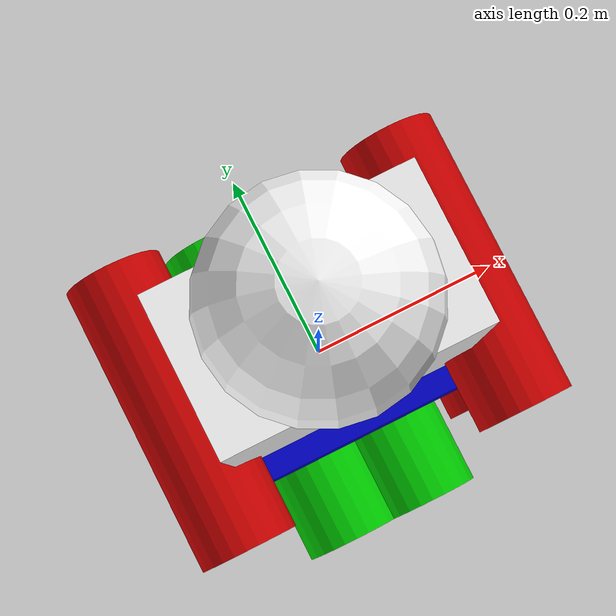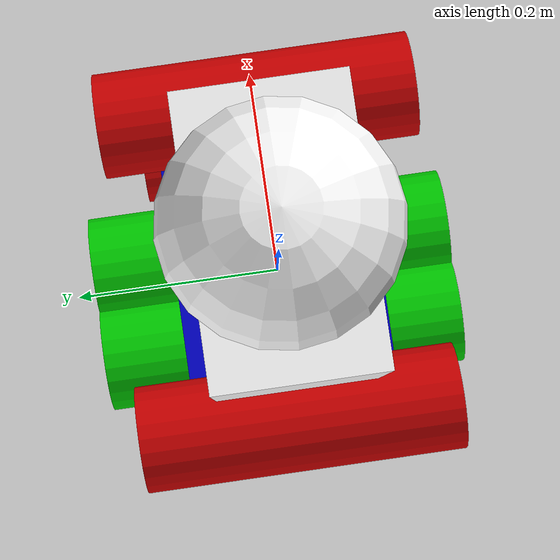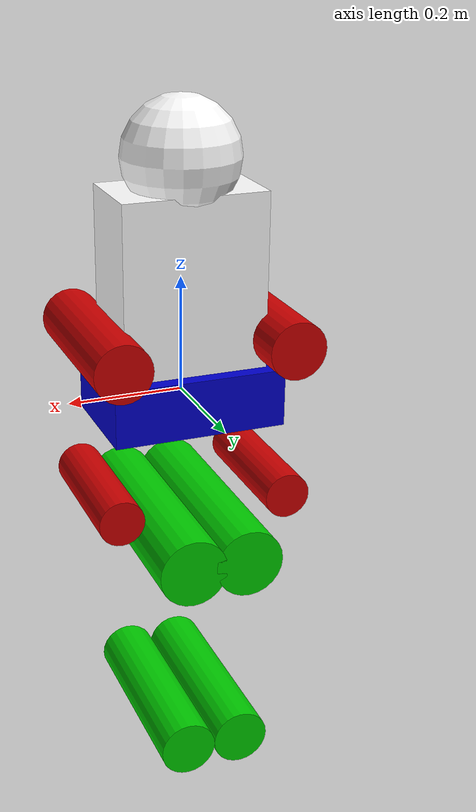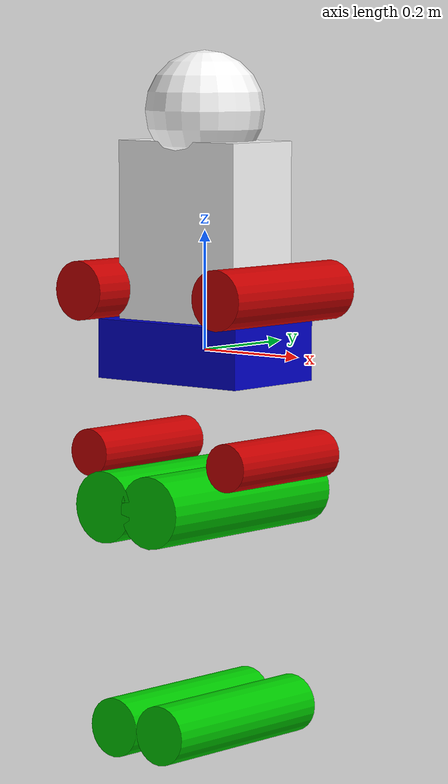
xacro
<?xml version="1.0"?>
<robot xmlns:xacro="http://www.ros.org/wiki/xacro" name="humanoid">

  <!-- Include materials -->
  <xacro:include filename="$(find humanoid_description)/urdf/materials.xacro" />

  <!-- Include Gazebo plugins -->
  <xacro:include filename="$(find humanoid_description)/urdf/gazebo.xacro" />

  <!-- Base link -->
  <link name="base_link">
    <visual>
      <geometry>
        <box size="0.3 0.2 0.1"/>
      </geometry>
      <material name="blue"/>
    </visual>
    <collision>
      <geometry>
        <box size="0.3 0.2 0.1"/>
      </geometry>
    </collision>
    <inertial>
      <mass value="5.0"/>
      <inertia ixx="0.1" ixy="0.0" ixz="0.0" iyy="0.1" iyz="0.0" izz="0.1"/>
    </inertial>
  </link>

  <!-- Torso -->
  <joint name="torso_joint" type="fixed">
    <parent link="base_link"/>
    <child link="torso"/>
    <origin xyz="0 0 0.15" rpy="0 0 0"/>
  </joint>

  <link name="torso">
    <visual>
      <geometry>
        <box size="0.25 0.15 0.4"/>
      </geometry>
      <material name="white"/>
    </visual>
    <collision>
      <geometry>
        <box size="0.25 0.15 0.4"/>
      </geometry>
    </collision>
    <inertial>
      <mass value="3.0"/>
      <inertia ixx="0.05" ixy="0.0" ixz="0.0" iyy="0.05" iyz="0.0" izz="0.05"/>
    </inertial>
  </link>

  <!-- Head -->
  <joint name="head_joint" type="fixed">
    <parent link="torso"/>
    <child link="head"/>
    <origin xyz="0 0 0.25" rpy="0 0 0"/>
  </joint>

  <link name="head">
    <visual>
      <geometry>
        <sphere radius="0.1"/>
      </geometry>
      <material name="white"/>
    </visual>
    <collision>
      <geometry>
        <sphere radius="0.1"/>
      </geometry>
    </collision>
    <inertial>
      <mass value="1.0"/>
      <inertia ixx="0.002" ixy="0.0" ixz="0.0" iyy="0.002" iyz="0.0" izz="0.002"/>
    </inertial>
  </link>

  <!-- Left Arm -->
  <joint name="left_shoulder_joint" type="revolute">
    <parent link="torso"/>
    <child link="left_upper_arm"/>
    <origin xyz="0.15 0 0.1" rpy="0 0 0"/>
    <axis xyz="0 1 0"/>
    <limit lower="-1.57" upper="1.57" effort="100" velocity="1"/>
  </joint>

  <link name="left_upper_arm">
    <visual>
      <geometry>
        <cylinder length="0.3" radius="0.05"/>
      </geometry>
      <material name="red"/>
      <origin xyz="0 0 -0.15" rpy="1.57 0 0"/>
    </visual>
    <collision>
      <geometry>
        <cylinder length="0.3" radius="0.05"/>
      </geometry>
      <origin xyz="0 0 -0.15" rpy="1.57 0 0"/>
    </collision>
    <inertial>
      <mass value="0.8"/>
      <inertia ixx="0.005" ixy="0.0" ixz="0.0" iyy="0.005" iyz="0.0" izz="0.005"/>
    </inertial>
  </link>

  <joint name="left_elbow_joint" type="revolute">
    <parent link="left_upper_arm"/>
    <child link="left_lower_arm"/>
    <origin xyz="0 0 -0.3" rpy="0 0 0"/>
    <axis xyz="0 1 0"/>
    <limit lower="-1.57" upper="1.57" effort="100" velocity="1"/>
  </joint>

  <link name="left_lower_arm">
    <visual>
      <geometry>
        <cylinder length="0.25" radius="0.04"/>
      </geometry>
      <material name="red"/>
      <origin xyz="0 0 -0.125" rpy="1.57 0 0"/>
    </visual>
    <collision>
      <geometry>
        <cylinder length="0.25" radius="0.04"/>
      </geometry>
      <origin xyz="0 0 -0.125" rpy="1.57 0 0"/>
    </collision>
    <inertial>
      <mass value="0.5"/>
      <inertia ixx="0.003" ixy="0.0" ixz="0.0" iyy="0.003" iyz="0.0" izz="0.003"/>
    </inertial>
  </link>

  <!-- Right Arm -->
  <joint name="right_shoulder_joint" type="revolute">
    <parent link="torso"/>
    <child link="right_upper_arm"/>
    <origin xyz="-0.15 0 0.1" rpy="0 0 0"/>
    <axis xyz="0 1 0"/>
    <limit lower="-1.57" upper="1.57" effort="100" velocity="1"/>
  </joint>

  <link name="right_upper_arm">
    <visual>
      <geometry>
        <cylinder length="0.3" radius="0.05"/>
      </geometry>
      <material name="red"/>
      <origin xyz="0 0 -0.15" rpy="1.57 0 0"/>
    </visual>
    <collision>
      <geometry>
        <cylinder length="0.3" radius="0.05"/>
      </geometry>
      <origin xyz="0 0 -0.15" rpy="1.57 0 0"/>
    </collision>
    <inertial>
      <mass value="0.8"/>
      <inertia ixx="0.005" ixy="0.0" ixz="0.0" iyy="0.005" iyz="0.0" izz="0.005"/>
    </inertial>
  </link>

  <joint name="right_elbow_joint" type="revolute">
    <parent link="right_upper_arm"/>
    <child link="right_lower_arm"/>
    <origin xyz="0 0 -0.3" rpy="0 0 0"/>
    <axis xyz="0 1 0"/>
    <limit lower="-1.57" upper="1.57" effort="100" velocity="1"/>
  </joint>

  <link name="right_lower_arm">
    <visual>
      <geometry>
        <cylinder length="0.25" radius="0.04"/>
      </geometry>
      <material name="red"/>
      <origin xyz="0 0 -0.125" rpy="1.57 0 0"/>
    </visual>
    <collision>
      <geometry>
        <cylinder length="0.25" radius="0.04"/>
      </geometry>
      <origin xyz="0 0 -0.125" rpy="1.57 0 0"/>
    </collision>
    <inertial>
      <mass value="0.5"/>
      <inertia ixx="0.003" ixy="0.0" ixz="0.0" iyy="0.003" iyz="0.0" izz="0.003"/>
    </inertial>
  </link>

  <!-- Left Leg -->
  <joint name="left_hip_joint" type="revolute">
    <parent link="base_link"/>
    <child link="left_upper_leg"/>
    <origin xyz="0.05 0 -0.05" rpy="0 0 0"/>
    <axis xyz="0 1 0"/>
    <limit lower="-1.57" upper="1.57" effort="100" velocity="1"/>
  </joint>

  <link name="left_upper_leg">
    <visual>
      <geometry>
        <cylinder length="0.4" radius="0.06"/>
      </geometry>
      <material name="green"/>
      <origin xyz="0 0 -0.2" rpy="1.57 0 0"/>
    </visual>
    <collision>
      <geometry>
        <cylinder length="0.4" radius="0.06"/>
      </geometry>
      <origin xyz="0 0 -0.2" rpy="1.57 0 0"/>
    </collision>
    <inertial>
      <mass value="1.0"/>
      <inertia ixx="0.01" ixy="0.0" ixz="0.0" iyy="0.01" iyz="0.0" izz="0.01"/>
    </inertial>
  </link>

  <joint name="left_knee_joint" type="revolute">
    <parent link="left_upper_leg"/>
    <child link="left_lower_leg"/>
    <origin xyz="0 0 -0.4" rpy="0 0 0"/>
    <axis xyz="0 1 0"/>
    <limit lower="-1.57" upper="1.57" effort="100" velocity="1"/>
  </joint>

  <link name="left_lower_leg">
    <visual>
      <geometry>
        <cylinder length="0.35" radius="0.05"/>
      </geometry>
      <material name="green"/>
      <origin xyz="0 0 -0.175" rpy="1.57 0 0"/>
    </visual>
    <collision>
      <geometry>
        <cylinder length="0.35" radius="0.05"/>
      </geometry>
      <origin xyz="0 0 -0.175" rpy="1.57 0 0"/>
    </collision>
    <inertial>
      <mass value="0.8"/>
      <inertia ixx="0.008" ixy="0.0" ixz="0.0" iyy="0.008" iyz="0.0" izz="0.008"/>
    </inertial>
  </link>

  <!-- Right Leg -->
  <joint name="right_hip_joint" type="revolute">
    <parent link="base_link"/>
    <child link="right_upper_leg"/>
    <origin xyz="-0.05 0 -0.05" rpy="0 0 0"/>
    <axis xyz="0 1 0"/>
    <limit lower="-1.57" upper="1.57" effort="100" velocity="1"/>
  </joint>

  <link name="right_upper_leg">
    <visual>
      <geometry>
        <cylinder length="0.4" radius="0.06"/>
      </geometry>
      <material name="green"/>
      <origin xyz="0 0 -0.2" rpy="1.57 0 0"/>
    </visual>
    <collision>
      <geometry>
        <cylinder length="0.4" radius="0.06"/>
      </geometry>
      <origin xyz="0 0 -0.2" rpy="1.57 0 0"/>
    </collision>
    <inertial>
      <mass value="1.0"/>
      <inertia ixx="0.01" ixy="0.0" ixz="0.0" iyy="0.01" iyz="0.0" izz="0.01"/>
    </inertial>
  </link>

  <joint name="right_knee_joint" type="revolute">
    <parent link="right_upper_leg"/>
    <child link="right_lower_leg"/>
    <origin xyz="0 0 -0.4" rpy="0 0 0"/>
    <axis xyz="0 1 0"/>
    <limit lower="-1.57" upper="1.57" effort="100" velocity="1"/>
  </joint>

  <link name="right_lower_leg">
    <visual>
      <geometry>
        <cylinder length="0.35" radius="0.05"/>
      </geometry>
      <material name="green"/>
      <origin xyz="0 0 -0.175" rpy="1.57 0 0"/>
    </visual>
    <collision>
      <geometry>
        <cylinder length="0.35" radius="0.05"/>
      </geometry>
      <origin xyz="0 0 -0.175" rpy="1.57 0 0"/>
    </collision>
    <inertial>
      <mass value="0.8"/>
      <inertia ixx="0.008" ixy="0.0" ixz="0.0" iyy="0.008" iyz="0.0" izz="0.008"/>
    </inertial>
  </link>

</robot>

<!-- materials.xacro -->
<robot xmlns:xacro="http://www.ros.org/wiki/xacro">

  <material name="blue">
    <color rgba="0.0 0.0 0.8 1.0"/>
  </material>

  <material name="red">
    <color rgba="0.8 0.0 0.0 1.0"/>
  </material>

  <material name="green">
    <color rgba="0.0 0.8 0.0 1.0"/>
  </material>

  <material name="white">
    <color rgba="1.0 1.0 1.0 1.0"/>
  </material>

  <material name="black">
    <color rgba="0.0 0.0 0.0 1.0"/>
  </material>

</robot>
